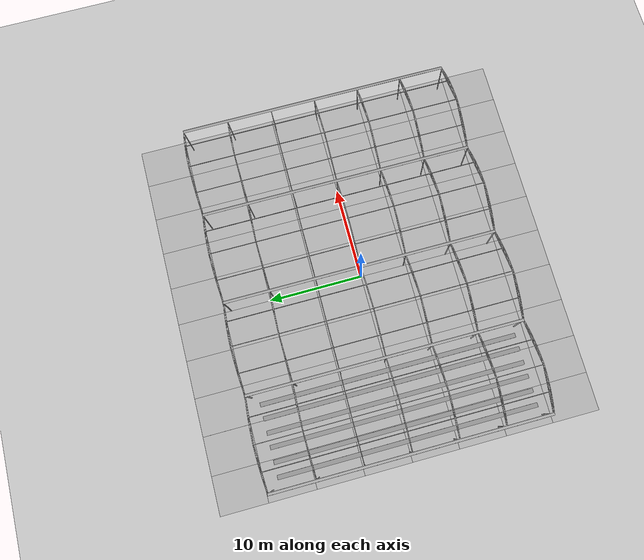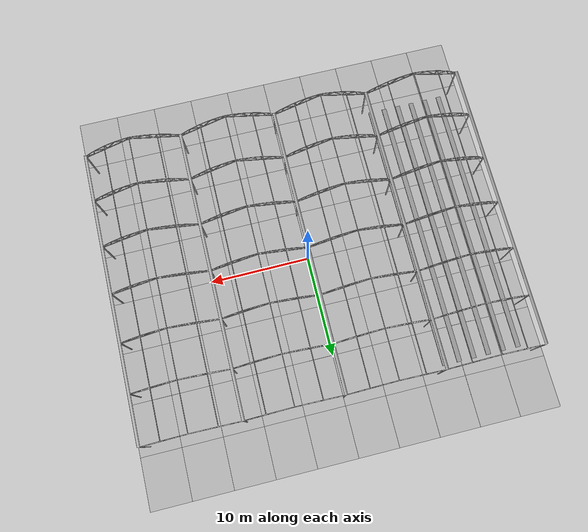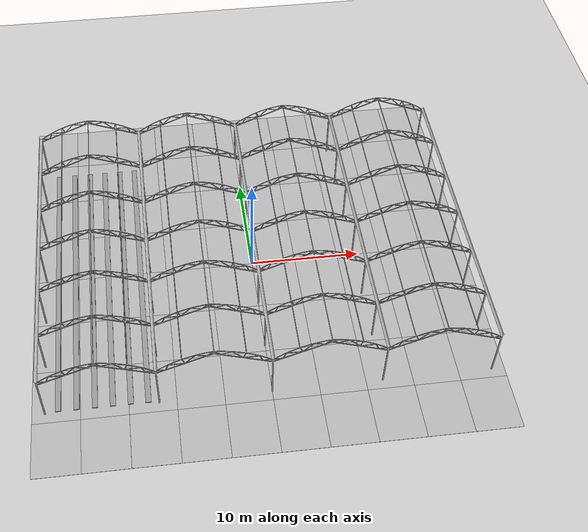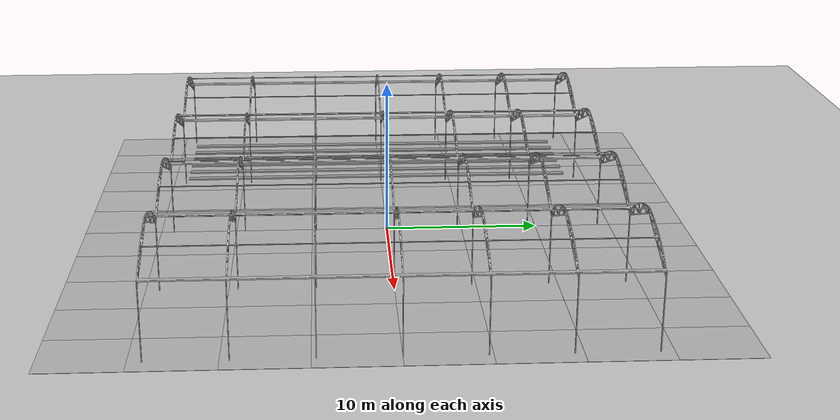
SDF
<sdf version="1.6">
 <world name="default">
  <light name="sun" type="directional">
   <pose>0 0 10 0 -0 0</pose>
   <diffuse>0.8 0.8 0.8 1</diffuse>
   <specular>0.2 0.2 0.2 1</specular>
   <attenuation>
    <range>1000</range>
    <constant>0.9</constant>
    <linear>0.01</linear>
    <quadratic>0.001</quadratic>
   </attenuation>
   <direction>-0.5 0.1 -0.9</direction>
  </light>
  <model name="ground_plane">
   <static>1</static>
   <link name="link">
    <collision name="collision">
     <geometry><plane><normal>0 0 1</normal><size>100 100</size></plane></geometry>
     <surface>
      <contact><collide_bitmask>65535</collide_bitmask></contact>
      <friction><ode><mu>100</mu><mu2>50</mu2></ode></friction>
     </surface>
    </collision>
    <visual name="visual">
     <cast_shadows>0</cast_shadows>
     <geometry><plane><normal>0 0 1</normal><size>100 100</size></plane></geometry>
     <material>
      <script><uri>file://media/materials/scripts/gazebo.material</uri><name>Gazebo/Grey</name></script>
     </material>
    </visual>
   </link>
  </model>
  <gravity>0 0 -9.8</gravity>
  <magnetic_field>6e-06 2.3e-05 -4.2e-05</magnetic_field>
  <atmosphere type="adiabatic"/>
  <physics name="default_physics" default="0" type="ode">
   <max_step_size>0.001</max_step_size>
   <real_time_factor>1</real_time_factor>
   <real_time_update_rate>1000</real_time_update_rate>
  </physics>
  <scene><ambient>0.4 0.4 0.4 1</ambient><background>0.7 0.7 0.7 1</background><shadows>1</shadows></scene>
  <audio><device>default</device></audio>
  <spherical_coordinates>
   <surface_model>EARTH_WGS84</surface_model>
   <latitude_deg>0</latitude_deg>
   <longitude_deg>0</longitude_deg>
   <elevation>0</elevation>
   <heading_deg>0</heading_deg>
  </spherical_coordinates>
  <model name="greenhouse">
   <static>1</static>
   <link name="link">
    <collision name="collision">
     <geometry>
      <mesh><scale>0.05 0.05 0.05</scale><uri>model://greenhouse/meshes/greenhouse.dae</uri></mesh>
     </geometry>
    </collision>
    <visual name="visual">
     <geometry>
      <mesh><scale>0.03 0.03 0.03</scale><uri>model://greenhouse/meshes/greenhouse.dae</uri></mesh>
     </geometry>
    </visual>
   </link>
   <pose>-24.6631 -23.579 0 0 -0 0</pose>
  </model>
  <model name="Box_24x15W">
   <link name="Wall">
    <pose>0 0 0.1985 0 -0 0</pose>
    <inertial>
     <mass>5</mass>
     <inertia><ixx>0.1022</ixx><iyy>0.2197</iyy><izz>0.1905</izz><ixy>0</ixy><ixz>0</ixz><iyz>0</iyz></inertia>
    </inertial>
    <collision name="Wall_Collision">
     <geometry><box><size>0.470639 27.6098 0.091294</size></box></geometry>
    </collision>
    <visual name="Wall_Visual">
     <geometry><box><size>0.470639 27.6098 0.091294</size></box></geometry>
     <material>
      <script><uri>file://media/materials/scripts/gazebo.material</uri><name>Gazebo/Grey</name></script>
      <ambient>1 1 1 1</ambient>
     </material>
    </visual>
   </link>
   <static>1</static>
   <pose>-17.8284 -0.233565 -0.139926 0 -0 0</pose>
  </model>
  <model name="Box_24x15W_clone">
   <link name="Wall">
    <pose>0 0 0.1985 0 -0 0</pose>
    <inertial>
     <mass>5</mass>
     <inertia><ixx>0.1022</ixx><iyy>0.2197</iyy><izz>0.1905</izz><ixy>0</ixy><ixz>0</ixz><iyz>0</iyz></inertia>
    </inertial>
    <collision name="Wall_Collision">
     <geometry><box><size>0.470639 27.6098 0.091294</size></box></geometry>
    </collision>
    <visual name="Wall_Visual">
     <geometry><box><size>0.470639 27.6098 0.091294</size></box></geometry>
     <material>
      <script><uri>file://media/materials/scripts/gazebo.material</uri><name>Gazebo/Grey</name></script>
      <ambient>1 1 1 1</ambient>
     </material>
    </visual>
   </link>
   <static>1</static>
   <pose>-16.3027 -0.233565 -0.139926 0 -0 0</pose>
  </model>
  <model name="Box_24x15W_clone_0">
   <link name="Wall">
    <pose>0 0 0.1985 0 -0 0</pose>
    <inertial>
     <mass>5</mass>
     <inertia><ixx>0.1022</ixx><iyy>0.2197</iyy><izz>0.1905</izz><ixy>0</ixy><ixz>0</ixz><iyz>0</iyz></inertia>
    </inertial>
    <collision name="Wall_Collision">
     <geometry><box><size>0.470639 27.6098 0.091294</size></box></geometry>
    </collision>
    <visual name="Wall_Visual">
     <geometry><box><size>0.470639 27.6098 0.091294</size></box></geometry>
     <material>
      <script><uri>file://media/materials/scripts/gazebo.material</uri><name>Gazebo/Grey</name></script>
      <ambient>1 1 1 1</ambient>
     </material>
    </visual>
   </link>
   <static>1</static>
   <pose>-14.7891 -0.233565 -0.139926 0 -0 0</pose>
  </model>
  <model name="Box_24x15W_clone_1">
   <link name="Wall">
    <pose>0 0 0.1985 0 -0 0</pose>
    <inertial>
     <mass>5</mass>
     <inertia><ixx>0.1022</ixx><iyy>0.2197</iyy><izz>0.1905</izz><ixy>0</ixy><ixz>0</ixz><iyz>0</iyz></inertia>
    </inertial>
    <collision name="Wall_Collision">
     <geometry><box><size>0.470639 27.6098 0.091294</size></box></geometry>
    </collision>
    <visual name="Wall_Visual">
     <geometry><box><size>0.470639 27.6098 0.091294</size></box></geometry>
     <material>
      <script><uri>file://media/materials/scripts/gazebo.material</uri><name>Gazebo/Grey</name></script>
      <ambient>1 1 1 1</ambient>
     </material>
    </visual>
   </link>
   <static>1</static>
   <pose>-13.3102 -0.233565 -0.139926 0 -0 0</pose>
  </model>
  <model name="Box_24x15W_clone_2">
   <link name="Wall">
    <pose>0 0 0.1985 0 -0 0</pose>
    <inertial>
     <mass>5</mass>
     <inertia><ixx>0.1022</ixx><iyy>0.2197</iyy><izz>0.1905</izz><ixy>0</ixy><ixz>0</ixz><iyz>0</iyz></inertia>
    </inertial>
    <collision name="Wall_Collision">
     <geometry><box><size>0.470639 27.6098 0.091294</size></box></geometry>
    </collision>
    <visual name="Wall_Visual">
     <geometry><box><size>0.470639 27.6098 0.091294</size></box></geometry>
     <material>
      <script><uri>file://media/materials/scripts/gazebo.material</uri><name>Gazebo/Grey</name></script>
      <ambient>1 1 1 1</ambient>
     </material>
    </visual>
   </link>
   <static>1</static>
   <pose>-11.8212 -0.233565 -0.139926 0 -0 0</pose>
  </model>
  <model name="Box_24x15W_clone_3">
   <link name="Wall">
    <pose>0 0 0.1985 0 -0 0</pose>
    <inertial>
     <mass>5</mass>
     <inertia><ixx>0.1022</ixx><iyy>0.2197</iyy><izz>0.1905</izz><ixy>0</ixy><ixz>0</ixz><iyz>0</iyz></inertia>
    </inertial>
    <collision name="Wall_Collision">
     <geometry><box><size>0.470639 27.6098 0.091294</size></box></geometry>
    </collision>
    <visual name="Wall_Visual">
     <geometry><box><size>0.470639 27.6098 0.091294</size></box></geometry>
     <material>
      <script><uri>file://media/materials/scripts/gazebo.material</uri><name>Gazebo/Grey</name></script>
      <ambient>1 1 1 1</ambient>
     </material>
    </visual>
   </link>
   <static>1</static>
   <pose>-10.356 -0.233565 -0.139926 0 -0 0</pose>
  </model>
  <model name="Ground_Soil">
   <model name="mud_box">
    <static>1</static>
    <link name="link">
     <collision name="collision"><geometry><box><size>8 10 0.02</size></box></geometry></collision>
     <visual name="visual_1">
      <pose>-2 2.5 0 0 -0 0</pose>
      <cast_shadows>0</cast_shadows>
      <geometry><box><size>4 5 0.02</size></box></geometry>
      <material>
       <script>
        <uri>model://mud_box/materials/scripts</uri>
        <uri>model://mud_box/materials/textures</uri>
        <name>vrc/mud</name>
       </script>
      </material>
     </visual>
     <visual name="visual_2">
      <pose>2 2.5 0 0 -0 0</pose>
      <cast_shadows>0</cast_shadows>
      <geometry><box><size>4 5 0.02</size></box></geometry>
      <material>
       <script>
        <uri>model://mud_box/materials/scripts</uri>
        <uri>model://mud_box/materials/textures</uri>
        <name>vrc/mud</name>
       </script>
      </material>
     </visual>
     <visual name="visual_3">
      <pose>2 -2.5 0 0 -0 0</pose>
      <cast_shadows>0</cast_shadows>
      <geometry><box><size>4 5 0.02</size></box></geometry>
      <material>
       <script>
        <uri>model://mud_box/materials/scripts</uri>
        <uri>model://mud_box/materials/textures</uri>
        <name>vrc/mud</name>
       </script>
      </material>
     </visual>
     <visual name="visual_4">
      <pose>-2 -2.5 0 0 -0 0</pose>
      <cast_shadows>0</cast_shadows>
      <geometry><box><size>4 5 0.02</size></box></geometry>
      <material>
       <script>
        <uri>model://mud_box/materials/scripts</uri>
        <uri>model://mud_box/materials/textures</uri>
        <name>vrc/mud</name>
       </script>
      </material>
     </visual>
    </link>
    <pose>-16.0013 0.000118 0 0 -0 0</pose>
   </model>
   <model name="mud_box_0">
    <static>1</static>
    <link name="link">
     <collision name="collision"><geometry><box><size>8 10 0.02</size></box></geometry></collision>
     <visual name="visual_1">
      <pose>-2 2.5 0 0 -0 0</pose>
      <cast_shadows>0</cast_shadows>
      <geometry><box><size>4 5 0.02</size></box></geometry>
      <material>
       <script>
        <uri>model://mud_box/materials/scripts</uri>
        <uri>model://mud_box/materials/textures</uri>
        <name>vrc/mud</name>
       </script>
      </material>
     </visual>
     <visual name="visual_2">
      <pose>2 2.5 0 0 -0 0</pose>
      <cast_shadows>0</cast_shadows>
      <geometry><box><size>4 5 0.02</size></box></geometry>
      <material>
       <script>
        <uri>model://mud_box/materials/scripts</uri>
        <uri>model://mud_box/materials/textures</uri>
        <name>vrc/mud</name>
       </script>
      </material>
     </visual>
     <visual name="visual_3">
      <pose>2 -2.5 0 0 -0 0</pose>
      <cast_shadows>0</cast_shadows>
      <geometry><box><size>4 5 0.02</size></box></geometry>
      <material>
       <script>
        <uri>model://mud_box/materials/scripts</uri>
        <uri>model://mud_box/materials/textures</uri>
        <name>vrc/mud</name>
       </script>
      </material>
     </visual>
     <visual name="visual_4">
      <pose>-2 -2.5 0 0 -0 0</pose>
      <cast_shadows>0</cast_shadows>
      <geometry><box><size>4 5 0.02</size></box></geometry>
      <material>
       <script>
        <uri>model://mud_box/materials/scripts</uri>
        <uri>model://mud_box/materials/textures</uri>
        <name>vrc/mud</name>
       </script>
      </material>
     </visual>
    </link>
    <pose>-7.99939 9.1e-05 0 0 -0 0</pose>
   </model>
   <model name="mud_box_1">
    <static>1</static>
    <link name="link">
     <collision name="collision"><geometry><box><size>8 10 0.02</size></box></geometry></collision>
     <visual name="visual_1">
      <pose>-2 2.5 0 0 -0 0</pose>
      <cast_shadows>0</cast_shadows>
      <geometry><box><size>4 5 0.02</size></box></geometry>
      <material>
       <script>
        <uri>model://mud_box/materials/scripts</uri>
        <uri>model://mud_box/materials/textures</uri>
        <name>vrc/mud</name>
       </script>
      </material>
     </visual>
     <visual name="visual_2">
      <pose>2 2.5 0 0 -0 0</pose>
      <cast_shadows>0</cast_shadows>
      <geometry><box><size>4 5 0.02</size></box></geometry>
      <material>
       <script>
        <uri>model://mud_box/materials/scripts</uri>
        <uri>model://mud_box/materials/textures</uri>
        <name>vrc/mud</name>
       </script>
      </material>
     </visual>
     <visual name="visual_3">
      <pose>2 -2.5 0 0 -0 0</pose>
      <cast_shadows>0</cast_shadows>
      <geometry><box><size>4 5 0.02</size></box></geometry>
      <material>
       <script>
        <uri>model://mud_box/materials/scripts</uri>
        <uri>model://mud_box/materials/textures</uri>
        <name>vrc/mud</name>
       </script>
      </material>
     </visual>
     <visual name="visual_4">
      <pose>-2 -2.5 0 0 -0 0</pose>
      <cast_shadows>0</cast_shadows>
      <geometry><box><size>4 5 0.02</size></box></geometry>
      <material>
       <script>
        <uri>model://mud_box/materials/scripts</uri>
        <uri>model://mud_box/materials/textures</uri>
        <name>vrc/mud</name>
       </script>
      </material>
     </visual>
    </link>
    <pose>0.000809 -0.000342 0 0 -0 0</pose>
   </model>
   <model name="mud_box_2">
    <static>1</static>
    <link name="link">
     <collision name="collision"><geometry><box><size>8 10 0.02</size></box></geometry></collision>
     <visual name="visual_1">
      <pose>-2 2.5 0 0 -0 0</pose>
      <cast_shadows>0</cast_shadows>
      <geometry><box><size>4 5 0.02</size></box></geometry>
      <material>
       <script>
        <uri>model://mud_box/materials/scripts</uri>
        <uri>model://mud_box/materials/textures</uri>
        <name>vrc/mud</name>
       </script>
      </material>
     </visual>
     <visual name="visual_2">
      <pose>2 2.5 0 0 -0 0</pose>
      <cast_shadows>0</cast_shadows>
      <geometry><box><size>4 5 0.02</size></box></geometry>
      <material>
       <script>
        <uri>model://mud_box/materials/scripts</uri>
        <uri>model://mud_box/materials/textures</uri>
        <name>vrc/mud</name>
       </script>
      </material>
     </visual>
     <visual name="visual_3">
      <pose>2 -2.5 0 0 -0 0</pose>
      <cast_shadows>0</cast_shadows>
      <geometry><box><size>4 5 0.02</size></box></geometry>
      <material>
       <script>
        <uri>model://mud_box/materials/scripts</uri>
        <uri>model://mud_box/materials/textures</uri>
        <name>vrc/mud</name>
       </script>
      </material>
     </visual>
     <visual name="visual_4">
      <pose>-2 -2.5 0 0 -0 0</pose>
      <cast_shadows>0</cast_shadows>
      <geometry><box><size>4 5 0.02</size></box></geometry>
      <material>
       <script>
        <uri>model://mud_box/materials/scripts</uri>
        <uri>model://mud_box/materials/textures</uri>
        <name>vrc/mud</name>
       </script>
      </material>
     </visual>
    </link>
    <pose>8.00089 -0.000148 0 0 -0 0</pose>
   </model>
   <model name="mud_box_3">
    <static>1</static>
    <link name="link">
     <collision name="collision"><geometry><box><size>8 10 0.02</size></box></geometry></collision>
     <visual name="visual_1">
      <pose>-2 2.5 0 0 -0 0</pose>
      <cast_shadows>0</cast_shadows>
      <geometry><box><size>4 5 0.02</size></box></geometry>
      <material>
       <script>
        <uri>model://mud_box/materials/scripts</uri>
        <uri>model://mud_box/materials/textures</uri>
        <name>vrc/mud</name>
       </script>
      </material>
     </visual>
     <visual name="visual_2">
      <pose>2 2.5 0 0 -0 0</pose>
      <cast_shadows>0</cast_shadows>
      <geometry><box><size>4 5 0.02</size></box></geometry>
      <material>
       <script>
        <uri>model://mud_box/materials/scripts</uri>
        <uri>model://mud_box/materials/textures</uri>
        <name>vrc/mud</name>
       </script>
      </material>
     </visual>
     <visual name="visual_3">
      <pose>2 -2.5 0 0 -0 0</pose>
      <cast_shadows>0</cast_shadows>
      <geometry><box><size>4 5 0.02</size></box></geometry>
      <material>
       <script>
        <uri>model://mud_box/materials/scripts</uri>
        <uri>model://mud_box/materials/textures</uri>
        <name>vrc/mud</name>
       </script>
      </material>
     </visual>
     <visual name="visual_4">
      <pose>-2 -2.5 0 0 -0 0</pose>
      <cast_shadows>0</cast_shadows>
      <geometry><box><size>4 5 0.02</size></box></geometry>
      <material>
       <script>
        <uri>model://mud_box/materials/scripts</uri>
        <uri>model://mud_box/materials/textures</uri>
        <name>vrc/mud</name>
       </script>
      </material>
     </visual>
    </link>
    <pose>15.9991 0.000313 0 0 -0 0</pose>
   </model>
   <static>0</static>
   <pose>0.010866 -14.9998 0 0 -0 0</pose>
  </model>
  <model name="Ground_Soil_0">
   <model name="mud_box">
    <static>1</static>
    <link name="link">
     <collision name="collision"><geometry><box><size>8 10 0.02</size></box></geometry></collision>
     <visual name="visual_1">
      <pose>-2 2.5 0 0 -0 0</pose>
      <cast_shadows>0</cast_shadows>
      <geometry><box><size>4 5 0.02</size></box></geometry>
      <material>
       <script>
        <uri>model://mud_box/materials/scripts</uri>
        <uri>model://mud_box/materials/textures</uri>
        <name>vrc/mud</name>
       </script>
      </material>
     </visual>
     <visual name="visual_2">
      <pose>2 2.5 0 0 -0 0</pose>
      <cast_shadows>0</cast_shadows>
      <geometry><box><size>4 5 0.02</size></box></geometry>
      <material>
       <script>
        <uri>model://mud_box/materials/scripts</uri>
        <uri>model://mud_box/materials/textures</uri>
        <name>vrc/mud</name>
       </script>
      </material>
     </visual>
     <visual name="visual_3">
      <pose>2 -2.5 0 0 -0 0</pose>
      <cast_shadows>0</cast_shadows>
      <geometry><box><size>4 5 0.02</size></box></geometry>
      <material>
       <script>
        <uri>model://mud_box/materials/scripts</uri>
        <uri>model://mud_box/materials/textures</uri>
        <name>vrc/mud</name>
       </script>
      </material>
     </visual>
     <visual name="visual_4">
      <pose>-2 -2.5 0 0 -0 0</pose>
      <cast_shadows>0</cast_shadows>
      <geometry><box><size>4 5 0.02</size></box></geometry>
      <material>
       <script>
        <uri>model://mud_box/materials/scripts</uri>
        <uri>model://mud_box/materials/textures</uri>
        <name>vrc/mud</name>
       </script>
      </material>
     </visual>
    </link>
    <pose>-16.0013 0.000118 0 0 -0 0</pose>
   </model>
   <model name="mud_box_0">
    <static>1</static>
    <link name="link">
     <collision name="collision"><geometry><box><size>8 10 0.02</size></box></geometry></collision>
     <visual name="visual_1">
      <pose>-2 2.5 0 0 -0 0</pose>
      <cast_shadows>0</cast_shadows>
      <geometry><box><size>4 5 0.02</size></box></geometry>
      <material>
       <script>
        <uri>model://mud_box/materials/scripts</uri>
        <uri>model://mud_box/materials/textures</uri>
        <name>vrc/mud</name>
       </script>
      </material>
     </visual>
     <visual name="visual_2">
      <pose>2 2.5 0 0 -0 0</pose>
      <cast_shadows>0</cast_shadows>
      <geometry><box><size>4 5 0.02</size></box></geometry>
      <material>
       <script>
        <uri>model://mud_box/materials/scripts</uri>
        <uri>model://mud_box/materials/textures</uri>
        <name>vrc/mud</name>
       </script>
      </material>
     </visual>
     <visual name="visual_3">
      <pose>2 -2.5 0 0 -0 0</pose>
      <cast_shadows>0</cast_shadows>
      <geometry><box><size>4 5 0.02</size></box></geometry>
      <material>
       <script>
        <uri>model://mud_box/materials/scripts</uri>
        <uri>model://mud_box/materials/textures</uri>
        <name>vrc/mud</name>
       </script>
      </material>
     </visual>
     <visual name="visual_4">
      <pose>-2 -2.5 0 0 -0 0</pose>
      <cast_shadows>0</cast_shadows>
      <geometry><box><size>4 5 0.02</size></box></geometry>
      <material>
       <script>
        <uri>model://mud_box/materials/scripts</uri>
        <uri>model://mud_box/materials/textures</uri>
        <name>vrc/mud</name>
       </script>
      </material>
     </visual>
    </link>
    <pose>-7.99939 9.1e-05 0 0 -0 0</pose>
   </model>
   <model name="mud_box_1">
    <static>1</static>
    <link name="link">
     <collision name="collision"><geometry><box><size>8 10 0.02</size></box></geometry></collision>
     <visual name="visual_1">
      <pose>-2 2.5 0 0 -0 0</pose>
      <cast_shadows>0</cast_shadows>
      <geometry><box><size>4 5 0.02</size></box></geometry>
      <material>
       <script>
        <uri>model://mud_box/materials/scripts</uri>
        <uri>model://mud_box/materials/textures</uri>
        <name>vrc/mud</name>
       </script>
      </material>
     </visual>
     <visual name="visual_2">
      <pose>2 2.5 0 0 -0 0</pose>
      <cast_shadows>0</cast_shadows>
      <geometry><box><size>4 5 0.02</size></box></geometry>
      <material>
       <script>
        <uri>model://mud_box/materials/scripts</uri>
        <uri>model://mud_box/materials/textures</uri>
        <name>vrc/mud</name>
       </script>
      </material>
     </visual>
     <visual name="visual_3">
      <pose>2 -2.5 0 0 -0 0</pose>
      <cast_shadows>0</cast_shadows>
      <geometry><box><size>4 5 0.02</size></box></geometry>
      <material>
       <script>
        <uri>model://mud_box/materials/scripts</uri>
        <uri>model://mud_box/materials/textures</uri>
        <name>vrc/mud</name>
       </script>
      </material>
     </visual>
     <visual name="visual_4">
      <pose>-2 -2.5 0 0 -0 0</pose>
      <cast_shadows>0</cast_shadows>
      <geometry><box><size>4 5 0.02</size></box></geometry>
      <material>
       <script>
        <uri>model://mud_box/materials/scripts</uri>
        <uri>model://mud_box/materials/textures</uri>
        <name>vrc/mud</name>
       </script>
      </material>
     </visual>
    </link>
    <pose>0.000809 -0.000342 0 0 -0 0</pose>
   </model>
   <model name="mud_box_2">
    <static>1</static>
    <link name="link">
     <collision name="collision"><geometry><box><size>8 10 0.02</size></box></geometry></collision>
     <visual name="visual_1">
      <pose>-2 2.5 0 0 -0 0</pose>
      <cast_shadows>0</cast_shadows>
      <geometry><box><size>4 5 0.02</size></box></geometry>
      <material>
       <script>
        <uri>model://mud_box/materials/scripts</uri>
        <uri>model://mud_box/materials/textures</uri>
        <name>vrc/mud</name>
       </script>
      </material>
     </visual>
     <visual name="visual_2">
      <pose>2 2.5 0 0 -0 0</pose>
      <cast_shadows>0</cast_shadows>
      <geometry><box><size>4 5 0.02</size></box></geometry>
      <material>
       <script>
        <uri>model://mud_box/materials/scripts</uri>
        <uri>model://mud_box/materials/textures</uri>
        <name>vrc/mud</name>
       </script>
      </material>
     </visual>
     <visual name="visual_3">
      <pose>2 -2.5 0 0 -0 0</pose>
      <cast_shadows>0</cast_shadows>
      <geometry><box><size>4 5 0.02</size></box></geometry>
      <material>
       <script>
        <uri>model://mud_box/materials/scripts</uri>
        <uri>model://mud_box/materials/textures</uri>
        <name>vrc/mud</name>
       </script>
      </material>
     </visual>
     <visual name="visual_4">
      <pose>-2 -2.5 0 0 -0 0</pose>
      <cast_shadows>0</cast_shadows>
      <geometry><box><size>4 5 0.02</size></box></geometry>
      <material>
       <script>
        <uri>model://mud_box/materials/scripts</uri>
        <uri>model://mud_box/materials/textures</uri>
        <name>vrc/mud</name>
       </script>
      </material>
     </visual>
    </link>
    <pose>8.00089 -0.000148 0 0 -0 0</pose>
   </model>
   <model name="mud_box_3">
    <static>1</static>
    <link name="link">
     <collision name="collision"><geometry><box><size>8 10 0.02</size></box></geometry></collision>
     <visual name="visual_1">
      <pose>-2 2.5 0 0 -0 0</pose>
      <cast_shadows>0</cast_shadows>
      <geometry><box><size>4 5 0.02</size></box></geometry>
      <material>
       <script>
        <uri>model://mud_box/materials/scripts</uri>
        <uri>model://mud_box/materials/textures</uri>
        <name>vrc/mud</name>
       </script>
      </material>
     </visual>
     <visual name="visual_2">
      <pose>2 2.5 0 0 -0 0</pose>
      <cast_shadows>0</cast_shadows>
      <geometry><box><size>4 5 0.02</size></box></geometry>
      <material>
       <script>
        <uri>model://mud_box/materials/scripts</uri>
        <uri>model://mud_box/materials/textures</uri>
        <name>vrc/mud</name>
       </script>
      </material>
     </visual>
     <visual name="visual_3">
      <pose>2 -2.5 0 0 -0 0</pose>
      <cast_shadows>0</cast_shadows>
      <geometry><box><size>4 5 0.02</size></box></geometry>
      <material>
       <script>
        <uri>model://mud_box/materials/scripts</uri>
        <uri>model://mud_box/materials/textures</uri>
        <name>vrc/mud</name>
       </script>
      </material>
     </visual>
     <visual name="visual_4">
      <pose>-2 -2.5 0 0 -0 0</pose>
      <cast_shadows>0</cast_shadows>
      <geometry><box><size>4 5 0.02</size></box></geometry>
      <material>
       <script>
        <uri>model://mud_box/materials/scripts</uri>
        <uri>model://mud_box/materials/textures</uri>
        <name>vrc/mud</name>
       </script>
      </material>
     </visual>
    </link>
    <pose>15.9991 0.000313 0 0 -0 0</pose>
   </model>
   <static>0</static>
   <pose>0.013259 -5.00278 0 0 -0 0</pose>
  </model>
  <model name="Ground_Soil_1">
   <model name="mud_box">
    <static>1</static>
    <link name="link">
     <collision name="collision"><geometry><box><size>8 10 0.02</size></box></geometry></collision>
     <visual name="visual_1">
      <pose>-2 2.5 0 0 -0 0</pose>
      <cast_shadows>0</cast_shadows>
      <geometry><box><size>4 5 0.02</size></box></geometry>
      <material>
       <script>
        <uri>model://mud_box/materials/scripts</uri>
        <uri>model://mud_box/materials/textures</uri>
        <name>vrc/mud</name>
       </script>
      </material>
     </visual>
     <visual name="visual_2">
      <pose>2 2.5 0 0 -0 0</pose>
      <cast_shadows>0</cast_shadows>
      <geometry><box><size>4 5 0.02</size></box></geometry>
      <material>
       <script>
        <uri>model://mud_box/materials/scripts</uri>
        <uri>model://mud_box/materials/textures</uri>
        <name>vrc/mud</name>
       </script>
      </material>
     </visual>
     <visual name="visual_3">
      <pose>2 -2.5 0 0 -0 0</pose>
      <cast_shadows>0</cast_shadows>
      <geometry><box><size>4 5 0.02</size></box></geometry>
      <material>
       <script>
        <uri>model://mud_box/materials/scripts</uri>
        <uri>model://mud_box/materials/textures</uri>
        <name>vrc/mud</name>
       </script>
      </material>
     </visual>
     <visual name="visual_4">
      <pose>-2 -2.5 0 0 -0 0</pose>
      <cast_shadows>0</cast_shadows>
      <geometry><box><size>4 5 0.02</size></box></geometry>
      <material>
       <script>
        <uri>model://mud_box/materials/scripts</uri>
        <uri>model://mud_box/materials/textures</uri>
        <name>vrc/mud</name>
       </script>
      </material>
     </visual>
    </link>
    <pose>-16.0013 0.000118 0 0 -0 0</pose>
   </model>
   <model name="mud_box_0">
    <static>1</static>
    <link name="link">
     <collision name="collision"><geometry><box><size>8 10 0.02</size></box></geometry></collision>
     <visual name="visual_1">
      <pose>-2 2.5 0 0 -0 0</pose>
      <cast_shadows>0</cast_shadows>
      <geometry><box><size>4 5 0.02</size></box></geometry>
      <material>
       <script>
        <uri>model://mud_box/materials/scripts</uri>
        <uri>model://mud_box/materials/textures</uri>
        <name>vrc/mud</name>
       </script>
      </material>
     </visual>
     <visual name="visual_2">
      <pose>2 2.5 0 0 -0 0</pose>
      <cast_shadows>0</cast_shadows>
      <geometry><box><size>4 5 0.02</size></box></geometry>
      <material>
       <script>
        <uri>model://mud_box/materials/scripts</uri>
        <uri>model://mud_box/materials/textures</uri>
        <name>vrc/mud</name>
       </script>
      </material>
     </visual>
     <visual name="visual_3">
      <pose>2 -2.5 0 0 -0 0</pose>
      <cast_shadows>0</cast_shadows>
      <geometry><box><size>4 5 0.02</size></box></geometry>
      <material>
       <script>
        <uri>model://mud_box/materials/scripts</uri>
        <uri>model://mud_box/materials/textures</uri>
        <name>vrc/mud</name>
       </script>
      </material>
     </visual>
     <visual name="visual_4">
      <pose>-2 -2.5 0 0 -0 0</pose>
      <cast_shadows>0</cast_shadows>
      <geometry><box><size>4 5 0.02</size></box></geometry>
      <material>
       <script>
        <uri>model://mud_box/materials/scripts</uri>
        <uri>model://mud_box/materials/textures</uri>
        <name>vrc/mud</name>
       </script>
      </material>
     </visual>
    </link>
    <pose>-7.99939 9.1e-05 0 0 -0 0</pose>
   </model>
   <model name="mud_box_1">
    <static>1</static>
    <link name="link">
     <collision name="collision"><geometry><box><size>8 10 0.02</size></box></geometry></collision>
     <visual name="visual_1">
      <pose>-2 2.5 0 0 -0 0</pose>
      <cast_shadows>0</cast_shadows>
      <geometry><box><size>4 5 0.02</size></box></geometry>
      <material>
       <script>
        <uri>model://mud_box/materials/scripts</uri>
        <uri>model://mud_box/materials/textures</uri>
        <name>vrc/mud</name>
       </script>
      </material>
     </visual>
     <visual name="visual_2">
      <pose>2 2.5 0 0 -0 0</pose>
      <cast_shadows>0</cast_shadows>
      <geometry><box><size>4 5 0.02</size></box></geometry>
      <material>
       <script>
        <uri>model://mud_box/materials/scripts</uri>
        <uri>model://mud_box/materials/textures</uri>
        <name>vrc/mud</name>
       </script>
      </material>
     </visual>
     <visual name="visual_3">
      <pose>2 -2.5 0 0 -0 0</pose>
      <cast_shadows>0</cast_shadows>
      <geometry><box><size>4 5 0.02</size></box></geometry>
      <material>
       <script>
        <uri>model://mud_box/materials/scripts</uri>
        <uri>model://mud_box/materials/textures</uri>
        <name>vrc/mud</name>
       </script>
      </material>
     </visual>
     <visual name="visual_4">
      <pose>-2 -2.5 0 0 -0 0</pose>
      <cast_shadows>0</cast_shadows>
      <geometry><box><size>4 5 0.02</size></box></geometry>
      <material>
       <script>
        <uri>model://mud_box/materials/scripts</uri>
        <uri>model://mud_box/materials/textures</uri>
        <name>vrc/mud</name>
       </script>
      </material>
     </visual>
    </link>
    <pose>0.000809 -0.000342 0 0 -0 0</pose>
   </model>
   <model name="mud_box_2">
    <static>1</static>
    <link name="link">
     <collision name="collision"><geometry><box><size>8 10 0.02</size></box></geometry></collision>
     <visual name="visual_1">
      <pose>-2 2.5 0 0 -0 0</pose>
      <cast_shadows>0</cast_shadows>
      <geometry><box><size>4 5 0.02</size></box></geometry>
      <material>
       <script>
        <uri>model://mud_box/materials/scripts</uri>
        <uri>model://mud_box/materials/textures</uri>
        <name>vrc/mud</name>
       </script>
      </material>
     </visual>
     <visual name="visual_2">
      <pose>2 2.5 0 0 -0 0</pose>
      <cast_shadows>0</cast_shadows>
      <geometry><box><size>4 5 0.02</size></box></geometry>
      <material>
       <script>
        <uri>model://mud_box/materials/scripts</uri>
        <uri>model://mud_box/materials/textures</uri>
        <name>vrc/mud</name>
       </script>
      </material>
     </visual>
     <visual name="visual_3">
      <pose>2 -2.5 0 0 -0 0</pose>
      <cast_shadows>0</cast_shadows>
      <geometry><box><size>4 5 0.02</size></box></geometry>
      <material>
       <script>
        <uri>model://mud_box/materials/scripts</uri>
        <uri>model://mud_box/materials/textures</uri>
        <name>vrc/mud</name>
       </script>
      </material>
     </visual>
     <visual name="visual_4">
      <pose>-2 -2.5 0 0 -0 0</pose>
      <cast_shadows>0</cast_shadows>
      <geometry><box><size>4 5 0.02</size></box></geometry>
      <material>
       <script>
        <uri>model://mud_box/materials/scripts</uri>
        <uri>model://mud_box/materials/textures</uri>
        <name>vrc/mud</name>
       </script>
      </material>
     </visual>
    </link>
    <pose>8.00089 -0.000148 0 0 -0 0</pose>
   </model>
   <model name="mud_box_3">
    <static>1</static>
    <link name="link">
     <collision name="collision"><geometry><box><size>8 10 0.02</size></box></geometry></collision>
     <visual name="visual_1">
      <pose>-2 2.5 0 0 -0 0</pose>
      <cast_shadows>0</cast_shadows>
      <geometry><box><size>4 5 0.02</size></box></geometry>
      <material>
       <script>
        <uri>model://mud_box/materials/scripts</uri>
        <uri>model://mud_box/materials/textures</uri>
        <name>vrc/mud</name>
       </script>
      </material>
     </visual>
     <visual name="visual_2">
      <pose>2 2.5 0 0 -0 0</pose>
      <cast_shadows>0</cast_shadows>
      <geometry><box><size>4 5 0.02</size></box></geometry>
      <material>
       <script>
        <uri>model://mud_box/materials/scripts</uri>
        <uri>model://mud_box/materials/textures</uri>
        <name>vrc/mud</name>
       </script>
      </material>
     </visual>
     <visual name="visual_3">
      <pose>2 -2.5 0 0 -0 0</pose>
      <cast_shadows>0</cast_shadows>
      <geometry><box><size>4 5 0.02</size></box></geometry>
      <material>
       <script>
        <uri>model://mud_box/materials/scripts</uri>
        <uri>model://mud_box/materials/textures</uri>
        <name>vrc/mud</name>
       </script>
      </material>
     </visual>
     <visual name="visual_4">
      <pose>-2 -2.5 0 0 -0 0</pose>
      <cast_shadows>0</cast_shadows>
      <geometry><box><size>4 5 0.02</size></box></geometry>
      <material>
       <script>
        <uri>model://mud_box/materials/scripts</uri>
        <uri>model://mud_box/materials/textures</uri>
        <name>vrc/mud</name>
       </script>
      </material>
     </visual>
    </link>
    <pose>15.9991 0.000313 0 0 -0 0</pose>
   </model>
   <static>0</static>
   <pose>0.00506 4.98318 0 0 -0 0</pose>
  </model>
  <model name="Ground_Soil_2">
   <model name="mud_box">
    <static>1</static>
    <link name="link">
     <collision name="collision"><geometry><box><size>8 10 0.02</size></box></geometry></collision>
     <visual name="visual_1">
      <pose>-2 2.5 0 0 -0 0</pose>
      <cast_shadows>0</cast_shadows>
      <geometry><box><size>4 5 0.02</size></box></geometry>
      <material>
       <script>
        <uri>model://mud_box/materials/scripts</uri>
        <uri>model://mud_box/materials/textures</uri>
        <name>vrc/mud</name>
       </script>
      </material>
     </visual>
     <visual name="visual_2">
      <pose>2 2.5 0 0 -0 0</pose>
      <cast_shadows>0</cast_shadows>
      <geometry><box><size>4 5 0.02</size></box></geometry>
      <material>
       <script>
        <uri>model://mud_box/materials/scripts</uri>
        <uri>model://mud_box/materials/textures</uri>
        <name>vrc/mud</name>
       </script>
      </material>
     </visual>
     <visual name="visual_3">
      <pose>2 -2.5 0 0 -0 0</pose>
      <cast_shadows>0</cast_shadows>
      <geometry><box><size>4 5 0.02</size></box></geometry>
      <material>
       <script>
        <uri>model://mud_box/materials/scripts</uri>
        <uri>model://mud_box/materials/textures</uri>
        <name>vrc/mud</name>
       </script>
      </material>
     </visual>
     <visual name="visual_4">
      <pose>-2 -2.5 0 0 -0 0</pose>
      <cast_shadows>0</cast_shadows>
      <geometry><box><size>4 5 0.02</size></box></geometry>
      <material>
       <script>
        <uri>model://mud_box/materials/scripts</uri>
        <uri>model://mud_box/materials/textures</uri>
        <name>vrc/mud</name>
       </script>
      </material>
     </visual>
    </link>
    <pose>-16.0013 0.000118 0 0 -0 0</pose>
   </model>
   <model name="mud_box_0">
    <static>1</static>
    <link name="link">
     <collision name="collision"><geometry><box><size>8 10 0.02</size></box></geometry></collision>
     <visual name="visual_1">
      <pose>-2 2.5 0 0 -0 0</pose>
      <cast_shadows>0</cast_shadows>
      <geometry><box><size>4 5 0.02</size></box></geometry>
      <material>
       <script>
        <uri>model://mud_box/materials/scripts</uri>
        <uri>model://mud_box/materials/textures</uri>
        <name>vrc/mud</name>
       </script>
      </material>
     </visual>
     <visual name="visual_2">
      <pose>2 2.5 0 0 -0 0</pose>
      <cast_shadows>0</cast_shadows>
      <geometry><box><size>4 5 0.02</size></box></geometry>
      <material>
       <script>
        <uri>model://mud_box/materials/scripts</uri>
        <uri>model://mud_box/materials/textures</uri>
        <name>vrc/mud</name>
       </script>
      </material>
     </visual>
     <visual name="visual_3">
      <pose>2 -2.5 0 0 -0 0</pose>
      <cast_shadows>0</cast_shadows>
      <geometry><box><size>4 5 0.02</size></box></geometry>
      <material>
       <script>
        <uri>model://mud_box/materials/scripts</uri>
        <uri>model://mud_box/materials/textures</uri>
        <name>vrc/mud</name>
       </script>
      </material>
     </visual>
     <visual name="visual_4">
      <pose>-2 -2.5 0 0 -0 0</pose>
      <cast_shadows>0</cast_shadows>
      <geometry><box><size>4 5 0.02</size></box></geometry>
      <material>
       <script>
        <uri>model://mud_box/materials/scripts</uri>
        <uri>model://mud_box/materials/textures</uri>
        <name>vrc/mud</name>
       </script>
      </material>
     </visual>
    </link>
    <pose>-7.99939 9.1e-05 0 0 -0 0</pose>
   </model>
   <model name="mud_box_1">
    <static>1</static>
    <link name="link">
     <collision name="collision"><geometry><box><size>8 10 0.02</size></box></geometry></collision>
     <visual name="visual_1">
      <pose>-2 2.5 0 0 -0 0</pose>
      <cast_shadows>0</cast_shadows>
      <geometry><box><size>4 5 0.02</size></box></geometry>
      <material>
       <script>
        <uri>model://mud_box/materials/scripts</uri>
        <uri>model://mud_box/materials/textures</uri>
        <name>vrc/mud</name>
       </script>
      </material>
     </visual>
     <visual name="visual_2">
      <pose>2 2.5 0 0 -0 0</pose>
      <cast_shadows>0</cast_shadows>
      <geometry><box><size>4 5 0.02</size></box></geometry>
      <material>
       <script>
        <uri>model://mud_box/materials/scripts</uri>
        <uri>model://mud_box/materials/textures</uri>
        <name>vrc/mud</name>
       </script>
      </material>
     </visual>
     <visual name="visual_3">
      <pose>2 -2.5 0 0 -0 0</pose>
      <cast_shadows>0</cast_shadows>
      <geometry><box><size>4 5 0.02</size></box></geometry>
      <material>
       <script>
        <uri>model://mud_box/materials/scripts</uri>
        <uri>model://mud_box/materials/textures</uri>
        <name>vrc/mud</name>
       </script>
      </material>
     </visual>
     <visual name="visual_4">
      <pose>-2 -2.5 0 0 -0 0</pose>
      <cast_shadows>0</cast_shadows>
      <geometry><box><size>4 5 0.02</size></box></geometry>
      <material>
       <script>
        <uri>model://mud_box/materials/scripts</uri>
        <uri>model://mud_box/materials/textures</uri>
        <name>vrc/mud</name>
       </script>
      </material>
     </visual>
    </link>
    <pose>0.000809 -0.000342 0 0 -0 0</pose>
   </model>
   <model name="mud_box_2">
    <static>1</static>
    <link name="link">
     <collision name="collision"><geometry><box><size>8 10 0.02</size></box></geometry></collision>
     <visual name="visual_1">
      <pose>-2 2.5 0 0 -0 0</pose>
      <cast_shadows>0</cast_shadows>
      <geometry><box><size>4 5 0.02</size></box></geometry>
      <material>
       <script>
        <uri>model://mud_box/materials/scripts</uri>
        <uri>model://mud_box/materials/textures</uri>
        <name>vrc/mud</name>
       </script>
      </material>
     </visual>
     <visual name="visual_2">
      <pose>2 2.5 0 0 -0 0</pose>
      <cast_shadows>0</cast_shadows>
      <geometry><box><size>4 5 0.02</size></box></geometry>
      <material>
       <script>
        <uri>model://mud_box/materials/scripts</uri>
        <uri>model://mud_box/materials/textures</uri>
        <name>vrc/mud</name>
       </script>
      </material>
     </visual>
     <visual name="visual_3">
      <pose>2 -2.5 0 0 -0 0</pose>
      <cast_shadows>0</cast_shadows>
      <geometry><box><size>4 5 0.02</size></box></geometry>
      <material>
       <script>
        <uri>model://mud_box/materials/scripts</uri>
        <uri>model://mud_box/materials/textures</uri>
        <name>vrc/mud</name>
       </script>
      </material>
     </visual>
     <visual name="visual_4">
      <pose>-2 -2.5 0 0 -0 0</pose>
      <cast_shadows>0</cast_shadows>
      <geometry><box><size>4 5 0.02</size></box></geometry>
      <material>
       <script>
        <uri>model://mud_box/materials/scripts</uri>
        <uri>model://mud_box/materials/textures</uri>
        <name>vrc/mud</name>
       </script>
      </material>
     </visual>
    </link>
    <pose>8.00089 -0.000148 0 0 -0 0</pose>
   </model>
   <model name="mud_box_3">
    <static>1</static>
    <link name="link">
     <collision name="collision"><geometry><box><size>8 10 0.02</size></box></geometry></collision>
     <visual name="visual_1">
      <pose>-2 2.5 0 0 -0 0</pose>
      <cast_shadows>0</cast_shadows>
      <geometry><box><size>4 5 0.02</size></box></geometry>
      <material>
       <script>
        <uri>model://mud_box/materials/scripts</uri>
        <uri>model://mud_box/materials/textures</uri>
        <name>vrc/mud</name>
       </script>
      </material>
     </visual>
     <visual name="visual_2">
      <pose>2 2.5 0 0 -0 0</pose>
      <cast_shadows>0</cast_shadows>
      <geometry><box><size>4 5 0.02</size></box></geometry>
      <material>
       <script>
        <uri>model://mud_box/materials/scripts</uri>
        <uri>model://mud_box/materials/textures</uri>
        <name>vrc/mud</name>
       </script>
      </material>
     </visual>
     <visual name="visual_3">
      <pose>2 -2.5 0 0 -0 0</pose>
      <cast_shadows>0</cast_shadows>
      <geometry><box><size>4 5 0.02</size></box></geometry>
      <material>
       <script>
        <uri>model://mud_box/materials/scripts</uri>
        <uri>model://mud_box/materials/textures</uri>
        <name>vrc/mud</name>
       </script>
      </material>
     </visual>
     <visual name="visual_4">
      <pose>-2 -2.5 0 0 -0 0</pose>
      <cast_shadows>0</cast_shadows>
      <geometry><box><size>4 5 0.02</size></box></geometry>
      <material>
       <script>
        <uri>model://mud_box/materials/scripts</uri>
        <uri>model://mud_box/materials/textures</uri>
        <name>vrc/mud</name>
       </script>
      </material>
     </visual>
    </link>
    <pose>15.9991 0.000313 0 0 -0 0</pose>
   </model>
   <static>0</static>
   <pose>0.009574 14.9849 0 0 -0 0</pose>
  </model>
 </world>
</sdf>
